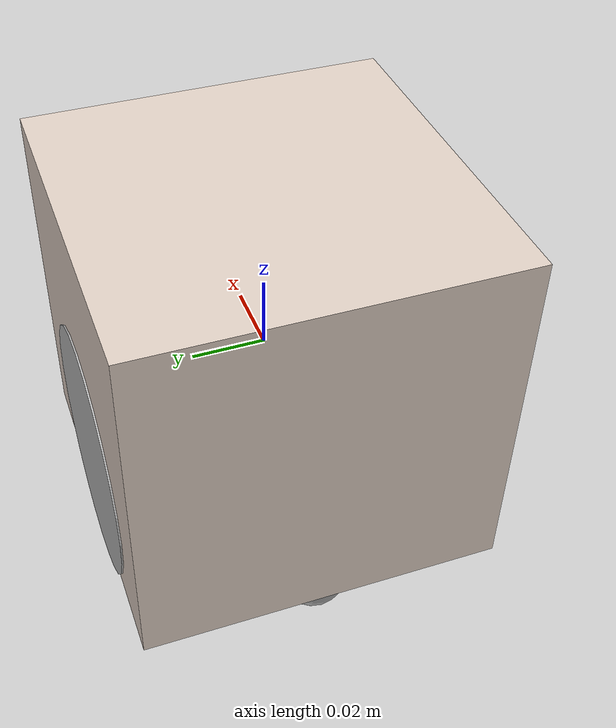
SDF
<?xml version="1.0" ?>
<sdf version='1.7'>
  <model name='box_bot'>
    <link name='base_link'>
      <inertial>
        <pose>0 0 -0.025 0 -0 0</pose>
        <mass>1</mass>
        <inertia>
          <ixx>0.000333333</ixx>
          <ixy>0</ixy>
          <ixz>0</ixz>
          <iyy>0.000333333</iyy>
          <iyz>0</iyz>
          <izz>0.000333333</izz>
        </inertia>
      </inertial>
      <collision name='base_link_fixed_joint_lump__collision_chassis_collision'>
        <pose>0 0 0 0 -0 0</pose>
        <geometry>
          <box>
            <size>0.1 0.1 0.1</size>
          </box>
        </geometry>
      </collision>
      <visual name='base_link_fixed_joint_lump__visual_chassis_visual'>
        <pose>0 0 0 0 -0 0</pose>
        <geometry>
          <box>
            <size>0.1 0.1 0.1</size>
          </box>
        </geometry>
          <material>
          <ambient> 0.870588235294 0.811764705882 0.764705882353 1.0 </ambient>
          <shader type='pixel'/>
          </material>

      </visual>
      <sensor name='box_bot_imu' type='imu'>
        <always_on>1</always_on>
        <update_rate>30</update_rate>
        <plugin name='box_bot_imu_plugin' filename='libgazebo_ros_imu_sensor.so'>
          <ros>
            <argument>~/out:=data</argument>
          </ros>
        </plugin>
      </sensor>
    </link>
    <joint name='back_yaw_joint' type='revolute'>
      <pose relative_to='base_link'>-0.04 0 -0.05 0 -0 0</pose>
      <parent>base_link</parent>
      <child>back_yaw_link</child>
      <axis>
        <xyz>0 0 1</xyz>
        <limit>
          <effort>1000</effort>
          <velocity>100</velocity>
          <lower>-1e+16</lower>
          <upper>1e+16</upper>
        </limit>
        <dynamics>
          <damping>0</damping>
          <friction>0.1</friction>
          <spring_reference>0</spring_reference>
          <spring_stiffness>0</spring_stiffness>
        </dynamics>
      </axis>
    </joint>
    <link name='back_yaw_link'>
      <pose relative_to='back_yaw_joint'>0 0 0 0 -0 0</pose>
      <inertial>
        <pose>0 0 0 0 1.5707 1.5707</pose>
        <mass>0.001</mass>
        <inertia>
          <ixx>5.14583e-09</ixx>
          <ixy>0</ixy>
          <ixz>0</ixz>
          <iyy>5.14583e-09</iyy>
          <iyz>0</iyz>
          <izz>1.0125e-08</izz>
        </inertia>
      </inertial>
      <collision name='back_yaw_link_fixed_joint_lump__link_right_wheel_collision_collision'>
        <pose>0 0 0 -1.5707 1.5708 0</pose>
        <geometry>
          <cylinder>
            <length>0.001</length>
            <radius>0.0045</radius>
          </cylinder>
        </geometry>
      </collision>
    </link>
    <joint name='back_roll_joint' type='revolute'>
      <pose relative_to='back_yaw_link'>0 0 0 0 -0 0</pose>
      <parent>back_yaw_link</parent>
      <child>back_roll_link</child>
      <axis>
        <xyz>1 0 0</xyz>
        <limit>
          <effort>1000</effort>
          <velocity>100</velocity>
          <lower>-1e+16</lower>
          <upper>1e+16</upper>
        </limit>
        <dynamics>
          <damping>0</damping>
          <friction>0.1</friction>
          <spring_reference>0</spring_reference>
          <spring_stiffness>0</spring_stiffness>
        </dynamics>
      </axis>
    </joint>
    <link name='back_roll_link'>
      <pose relative_to='back_roll_joint'>0 0 0 0 -0 0</pose>
      <inertial>
        <pose>0 0 0 0 1.5707 1.5707</pose>
        <mass>0.001</mass>
        <inertia>
          <ixx>5.14583e-09</ixx>
          <ixy>0</ixy>
          <ixz>0</ixz>
          <iyy>5.14583e-09</iyy>
          <iyz>0</iyz>
          <izz>1.0125e-08</izz>
        </inertia>
      </inertial>
      <collision name='back_roll_link_fixed_joint_lump__link_right_wheel_collision_collision'>
        <pose>0 0 0 -1.5707 1.5708 0</pose>
        <geometry>
          <cylinder>
            <length>0.001</length>
            <radius>0.0045</radius>
          </cylinder>
        </geometry>
      </collision>
    </link>
    <joint name='back_pitch_joint' type='revolute'>
      <pose relative_to='back_roll_link'>0 0 0 0 -0 0</pose>
      <parent>back_roll_link</parent>
      <child>back_pitch_link</child>
      <axis>
        <xyz>0 1 0</xyz>
        <limit>
          <effort>1000</effort>
          <velocity>100</velocity>
          <lower>-1e+16</lower>
          <upper>1e+16</upper>
        </limit>
        <dynamics>
          <damping>0</damping>
          <friction>0.1</friction>
          <spring_reference>0</spring_reference>
          <spring_stiffness>0</spring_stiffness>
        </dynamics>
      </axis>
    </joint>
    <link name='back_pitch_link'>
      <pose relative_to='back_pitch_joint'>0 0 0 0 -0 0</pose>
      <inertial>
        <pose>0 0 0 0 1.5707 1.5707</pose>
        <mass>0.001</mass>
        <inertia>
          <ixx>4e-08</ixx>
          <ixy>0</ixy>
          <ixz>0</ixz>
          <iyy>4e-08</iyy>
          <iyz>0</iyz>
          <izz>4e-08</izz>
        </inertia>
      </inertial>
      <collision name='back_pitch_link_fixed_joint_lump__back_collision_collision'>
        <pose>0 0 0 -1.5707 1.5708 0</pose>
        <geometry>
          <sphere>
            <radius>0.01</radius>
          </sphere>
        </geometry>
      </collision>
      <visual name='back_pitch_link_fixed_joint_lump__back_visual_visual'>
        <pose>0 0 0 -1.5707 1.5708 0</pose>
        <geometry>
          <sphere>
            <radius>0.01</radius>
          </sphere>
        </geometry>
      </visual>
    </link>
    <joint name='front_yaw_joint' type='revolute'>
      <pose relative_to='base_link'>0.04 0 -0.05 0 -0 0</pose>
      <parent>base_link</parent>
      <child>front_yaw_link</child>
      <axis>
        <xyz>0 0 1</xyz>
        <limit>
          <effort>1000</effort>
          <velocity>100</velocity>
          <lower>-1e+16</lower>
          <upper>1e+16</upper>
        </limit>
        <dynamics>
          <damping>0</damping>
          <friction>0.1</friction>
          <spring_reference>0</spring_reference>
          <spring_stiffness>0</spring_stiffness>
        </dynamics>
      </axis>
    </joint>
    <link name='front_yaw_link'>
      <pose relative_to='front_yaw_joint'>0 0 0 0 -0 0</pose>
      <inertial>
        <pose>0 0 0 0 1.5707 1.5707</pose>
        <mass>0.001</mass>
        <inertia>
          <ixx>5.14583e-09</ixx>
          <ixy>0</ixy>
          <ixz>0</ixz>
          <iyy>5.14583e-09</iyy>
          <iyz>0</iyz>
          <izz>1.0125e-08</izz>
        </inertia>
      </inertial>
      <collision name='front_yaw_link_fixed_joint_lump__link_right_wheel_collision_collision'>
        <pose>0 0 0 -1.5707 1.5708 0</pose>
        <geometry>
          <cylinder>
            <length>0.001</length>
            <radius>0.0045</radius>
          </cylinder>
        </geometry>
      </collision>
    </link>
    <joint name='front_roll_joint' type='revolute'>
      <pose relative_to='front_yaw_link'>0 0 0 0 -0 0</pose>
      <parent>front_yaw_link</parent>
      <child>front_roll_link</child>
      <axis>
        <xyz>1 0 0</xyz>
        <limit>
          <effort>1000</effort>
          <velocity>100</velocity>
          <lower>-1e+16</lower>
          <upper>1e+16</upper>
        </limit>
        <dynamics>
          <damping>0</damping>
          <friction>0.1</friction>
          <spring_reference>0</spring_reference>
          <spring_stiffness>0</spring_stiffness>
        </dynamics>
      </axis>
    </joint>
    <link name='front_roll_link'>
      <pose relative_to='front_roll_joint'>0 0 0 0 -0 0</pose>
      <inertial>
        <pose>0 0 0 0 1.5707 1.5707</pose>
        <mass>0.001</mass>
        <inertia>
          <ixx>5.14583e-09</ixx>
          <ixy>0</ixy>
          <ixz>0</ixz>
          <iyy>5.14583e-09</iyy>
          <iyz>0</iyz>
          <izz>1.0125e-08</izz>
        </inertia>
      </inertial>
      <collision name='front_roll_link_fixed_joint_lump__link_right_wheel_collision_collision'>
        <pose>0 0 0 -1.5707 1.5708 0</pose>
        <geometry>
          <cylinder>
            <length>0.001</length>
            <radius>0.0045</radius>
          </cylinder>
        </geometry>
      </collision>
    </link>
    <joint name='front_pitch_joint' type='revolute'>
      <pose relative_to='front_roll_link'>0 0 0 0 -0 0</pose>
      <parent>front_roll_link</parent>
      <child>front_pitch_link</child>
      <axis>
        <xyz>0 1 0</xyz>
        <limit>
          <effort>1000</effort>
          <velocity>100</velocity>
          <lower>-1e+16</lower>
          <upper>1e+16</upper>
        </limit>
        <dynamics>
          <damping>0</damping>
          <friction>0.1</friction>
          <spring_reference>0</spring_reference>
          <spring_stiffness>0</spring_stiffness>
        </dynamics>
      </axis>
    </joint>
    <link name='front_pitch_link'>
      <pose relative_to='front_pitch_joint'>0 0 0 0 -0 0</pose>
      <inertial>
        <pose>0 0 0 0 1.5707 1.5707</pose>
        <mass>0.001</mass>
        <inertia>
          <ixx>4e-08</ixx>
          <ixy>0</ixy>
          <ixz>0</ixz>
          <iyy>4e-08</iyy>
          <iyz>0</iyz>
          <izz>4e-08</izz>
        </inertia>
      </inertial>
      <collision name='front_pitch_link_fixed_joint_lump__front_collision_collision'>
        <pose>0 0 0 -1.5707 1.5708 0</pose>
        <geometry>
          <sphere>
            <radius>0.01</radius>
          </sphere>
        </geometry>
      </collision>
      <visual name='front_pitch_link_fixed_joint_lump__front_visual_visual'>
        <pose>0 0 0 -1.5707 1.5708 0</pose>
        <geometry>
          <sphere>
            <radius>0.01</radius>
          </sphere>
        </geometry>
      </visual>
    </link>
    <joint name='joint_left_wheel' type='revolute'>
      <pose relative_to='base_link'>0 -0.05 -0.025 0 -0 0</pose>
      <parent>base_link</parent>
      <child>left_wheel</child>
      <axis>
        <xyz>0 1 0</xyz>
        <limit>
          <effort>10000</effort>
          <velocity>1000</velocity>
          <lower>-1e+16</lower>
          <upper>1e+16</upper>
        </limit>
        <dynamics>
          <spring_reference>0</spring_reference>
          <spring_stiffness>0</spring_stiffness>
        </dynamics>
      </axis>
    </joint>
    <link name='left_wheel'>
      <pose relative_to='joint_left_wheel'>0 0 0 0 -0 0</pose>
      <inertial>
        <pose>0 0 0 0 1.5707 1.5707</pose>
        <mass>0.2</mass>
        <inertia>
          <ixx>3.12667e-05</ixx>
          <ixy>0</ixy>
          <ixz>0</ixz>
          <iyy>3.12667e-05</iyy>
          <iyz>0</iyz>
          <izz>6.25e-05</izz>
        </inertia>
      </inertial>
      <collision name='left_wheel_fixed_joint_lump__link_right_wheel_collision_collision'>
        <pose>0 0 0 -1.5707 1.5708 0</pose>
        <geometry>
          <cylinder>
            <length>0.001</length>
            <radius>0.035</radius>
          </cylinder>
        </geometry>
      </collision>
      <visual name='left_wheel_fixed_joint_lump__link_right_wheel_visual_visual'>
        <pose>0 0 0 -1.5707 1.5708 0</pose>
        <geometry>
          <cylinder>
            <length>0.001</length>
            <radius>0.035</radius>
          </cylinder>
        </geometry>
      </visual>
    </link>
    <joint name='joint_right_wheel' type='revolute'>
      <pose relative_to='base_link'>0 0.05 -0.025 0 -0 0</pose>
      <parent>base_link</parent>
      <child>right_wheel</child>
      <axis>
        <xyz>0 1 0</xyz>
        <limit>
          <effort>10000</effort>
          <velocity>1000</velocity>
          <lower>-1e+16</lower>
          <upper>1e+16</upper>
        </limit>
        <dynamics>
          <spring_reference>0</spring_reference>
          <spring_stiffness>0</spring_stiffness>
        </dynamics>
      </axis>
    </joint>
    <link name='right_wheel'>
      <pose relative_to='joint_right_wheel'>0 0 0 0 -0 0</pose>
      <inertial>
        <pose>0 0 0 0 1.5707 1.5707</pose>
        <mass>0.2</mass>
        <inertia>
          <ixx>3.12667e-05</ixx>
          <ixy>0</ixy>
          <ixz>0</ixz>
          <iyy>3.12667e-05</iyy>
          <iyz>0</iyz>
          <izz>6.25e-05</izz>
        </inertia>
      </inertial>
      <collision name='right_wheel_fixed_joint_lump__link_right_wheel_collision_collision'>
        <pose>0 0 0 -1.5707 1.5708 0</pose>
        <geometry>
          <cylinder>
            <length>0.001</length>
            <radius>0.035</radius>
          </cylinder>
        </geometry>
      </collision>
      <visual name='right_wheel_fixed_joint_lump__link_right_wheel_visual_visual'>
        <pose>0 0 0 -1.5707 1.5708 0</pose>
        <geometry>
          <cylinder>
            <length>0.001</length>
            <radius>0.035</radius>
          </cylinder>
        </geometry>
      </visual>
    </link>
    <plugin name='gazebo_ros_control' filename='libgazebo_ros_control.so'>
      <robotNamespace>/box_bot</robotNamespace>
      <robotParam>/robot_description</robotParam>
      <robotSimType>gazebo_ros_control/DefaultRobotHWSim</robotSimType>
    </plugin>
    <static>0</static>
    <plugin name='differential_drive_controller' filename='libgazebo_ros_diff_drive.so'>
      <ros/>
      <left_joint>joint_right_wheel</left_joint>
      <right_joint>joint_left_wheel</right_joint>
      <wheel_separation>0.1</wheel_separation>
      <wheel_diameter>0.025</wheel_diameter>
      <max_wheel_torque>0.1</max_wheel_torque>
      <max_wheel_acceleration>1.0</max_wheel_acceleration>
      <publish_odom>1</publish_odom>
      <publish_odom_tf>1</publish_odom_tf>
      <odometry_frame>odom</odometry_frame>
      <robot_base_frame>chassis</robot_base_frame>
    </plugin>
    <plugin name='box_bot_joint_state' filename='libgazebo_ros_joint_state_publisher.so'>
      <ros>
        <remapping>~/out:=joint_states</remapping>
      </ros>
      <update_rate>30</update_rate>
      <joint_name>wheel_left_joint</joint_name>
      <joint_name>wheel_right_joint</joint_name>
    </plugin>
  </model>
</sdf>
